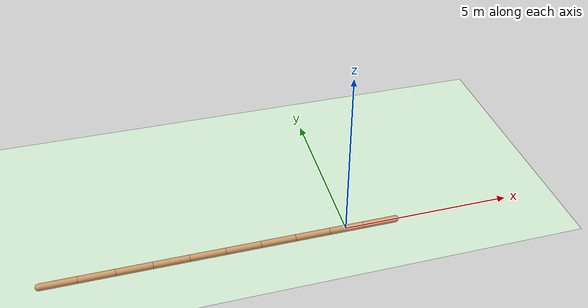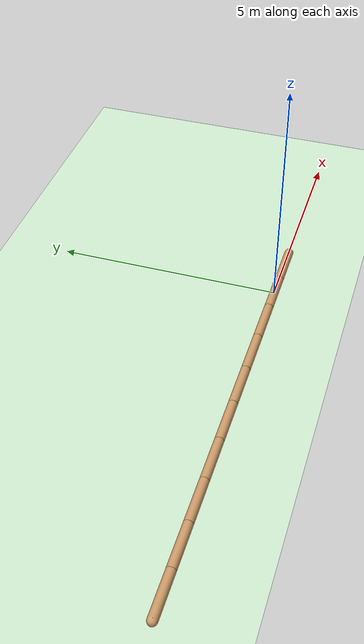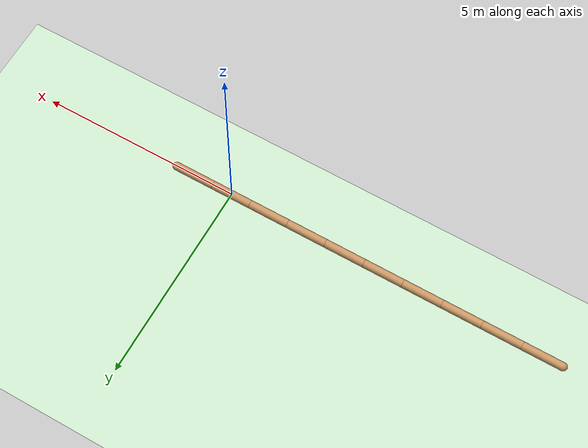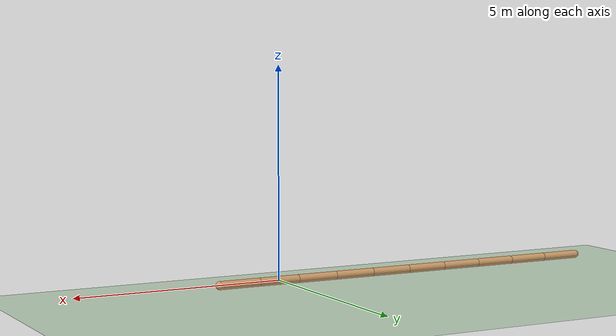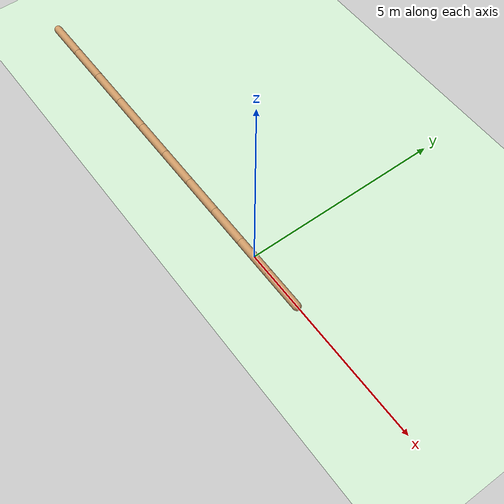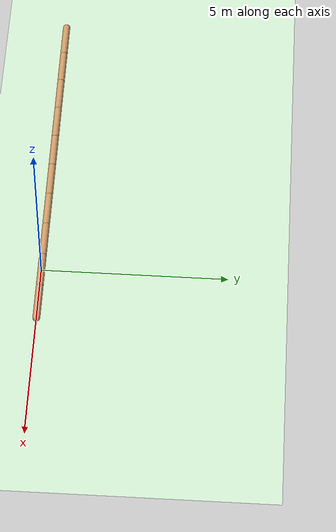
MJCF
<mujoco model="swimmer">
  <compiler angle="degree" coordinate="local" inertiafromgeom="true"/>
  <option collision="predefined" density="4000" integrator="RK4" timestep="0.01" viscosity="0.1"/>
  <default>
    <geom conaffinity="1" condim="1" contype="1" material="geom" rgba="0.8 0.6 .4 1"/>
    <joint armature='0.1'  />
  </default>
  <asset>
    <texture builtin="gradient" height="100" rgb1="1 1 1" rgb2="0 0 0" type="skybox" width="100"/>
    <texture builtin="flat" height="1278" mark="cross" markrgb="1 1 1" name="texgeom" random="0.01" rgb1="0.8 0.6 0.4" rgb2="0.8 0.6 0.4" type="cube" width="127"/>
    <texture builtin="checker" height="100" name="texplane" rgb1="0 0 0" rgb2="0.8 0.8 0.8" type="2d" width="100"/>
    <material name="MatPlane" reflectance="0.5" shininess="1" specular="1" texrepeat="30 30" texture="texplane"/>
    <material name="geom" texture="texgeom" texuniform="true"/>
  </asset>
  <worldbody>
    <light cutoff="100" diffuse="1 1 1" dir="-0 0 -1.3" directional="true" exponent="1" pos="0 0 1.3" specular=".1 .1 .1"/>
    <geom conaffinity="1" condim="3" material="MatPlane" name="floor" pos="0 0 -0.1" rgba="0.8 0.9 0.8 1" size="40 40 0.1" type="plane"/>
    <!--  ================= SWIMMER ================= /-->
    <body name="torso" pos="0 0 0">
      <camera name="track" mode="trackcom" pos="0 -3 3" xyaxes="1 0 0 0 1 1"/>
      <geom density="1000" fromto="1.5 0 0 0.5 0 0" size="0.1" type="capsule"/>
      <joint axis="1 0 0" name="slider1" pos="0 0 0" type="slide"/>
      <joint axis="0 1 0" name="slider2" pos="0 0 0" type="slide"/>
      <joint axis="0 0 1" name="free_body_rot" pos="0 0 0" type="hinge"/>
      <body name="mid" pos="0.5 0 0">
        <geom density="1000" fromto="0 0 0 -1 0 0" size="0.1" type="capsule"/>
        <joint axis="0 0 1" limited="true" name="motor1_rot" pos="0 0 0" range="-100 100" type="hinge"/>
        <body name="back" pos="-1 0 0">
          <geom density="1000" fromto="0 0 0 -1 0 0" size="0.1" type="capsule"/>
          <joint axis="0 0 1" limited="true" name="motor2_rot" pos="0 0 0" range="-100 100" type="hinge"/>
	        <body name="corps1" pos="-1 0 0">
            <geom density="1000" fromto="0 0 0 -1 0 0" size="0.1" type="capsule"/>
            <joint axis="0 0 1" limited="true" name="motor3_rot" pos="0 0 0" range="-100 100" type="hinge"/>
            <body name="corps2" pos="-1 0 0">
              <geom density="1000" fromto="0 0 0 -1 0 0" size="0.1" type="capsule"/>
              <joint axis="0 0 1" limited="true" name="motor4_rot" pos="0 0 0" range="-100 100" type="hinge"/>
              <body name="corps3" pos="-1 0 0">
                <geom density="1000" fromto="0 0 0 -1 0 0" size="0.1" type="capsule"/>
                <joint axis="0 0 1" limited="true" name="motor5_rot" pos="0 0 0" range="-100 100" type="hinge"/>
                <body name="corps4" pos="-1 0 0">
                  <geom density="1000" fromto="0 0 0 -1 0 0" size="0.1" type="capsule"/>
                  <joint axis="0 0 1" limited="true" name="motor6_rot" pos="0 0 0" range="-100 100" type="hinge"/>
                  <body name="corps5" pos="-1 0 0">
                    <geom density="1000" fromto="0 0 0 -1 0 0" size="0.1" type="capsule"/>
                    <joint axis="0 0 1" limited="true" name="motor7_rot" pos="0 0 0" range="-100 100" type="hinge"/>
                    <body name="corps6" pos="-1 0 0">
                      <geom density="1000" fromto="0 0 0 -1 0 0" size="0.1" type="capsule"/>
                      <joint axis="0 0 1" limited="true" name="motor8_rot" pos="0 0 0" range="-100 100" type="hinge"/>
                      <body name="corps7" pos="-1 0 0">
                        <geom density="1000" fromto="0 0 0 -1 0 0" size="0.1" type="capsule"/>
                        <joint axis="0 0 1" limited="true" name="motor9_rot" pos="0 0 0" range="-100 100" type="hinge"/>
                      </body>
                    </body>
                  </body>
                </body>
              </body>
            </body>
          </body>
        </body>
      </body>
    </body>
  </worldbody>
  <actuator>
    <motor ctrllimited="true" ctrlrange="-1 1" gear="150.0" joint="motor1_rot"/>
    <motor ctrllimited="true" ctrlrange="-1 1" gear="150.0" joint="motor2_rot"/>
    <motor ctrllimited="true" ctrlrange="-1 1" gear="150.0" joint="motor3_rot"/>
    <motor ctrllimited="true" ctrlrange="-1 1" gear="150.0" joint="motor4_rot"/>
    <motor ctrllimited="true" ctrlrange="-1 1" gear="150.0" joint="motor5_rot"/>
    <motor ctrllimited="true" ctrlrange="-1 1" gear="150.0" joint="motor6_rot"/>
    <motor ctrllimited="true" ctrlrange="-1 1" gear="150.0" joint="motor7_rot"/>
    <motor ctrllimited="true" ctrlrange="-1 1" gear="150.0" joint="motor8_rot"/>
    <motor ctrllimited="true" ctrlrange="-1 1" gear="150.0" joint="motor9_rot"/>
  </actuator>
</mujoco>
